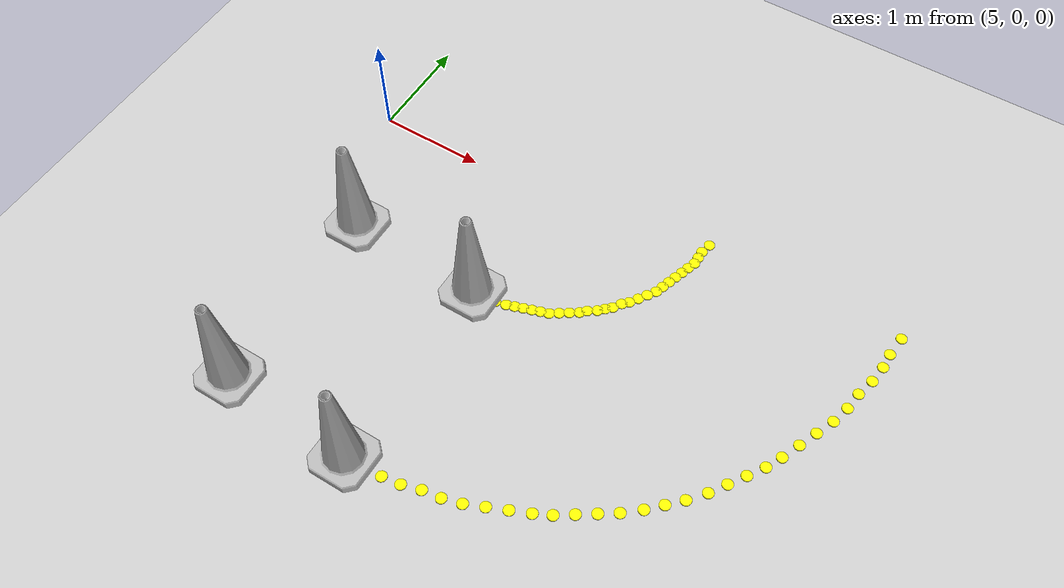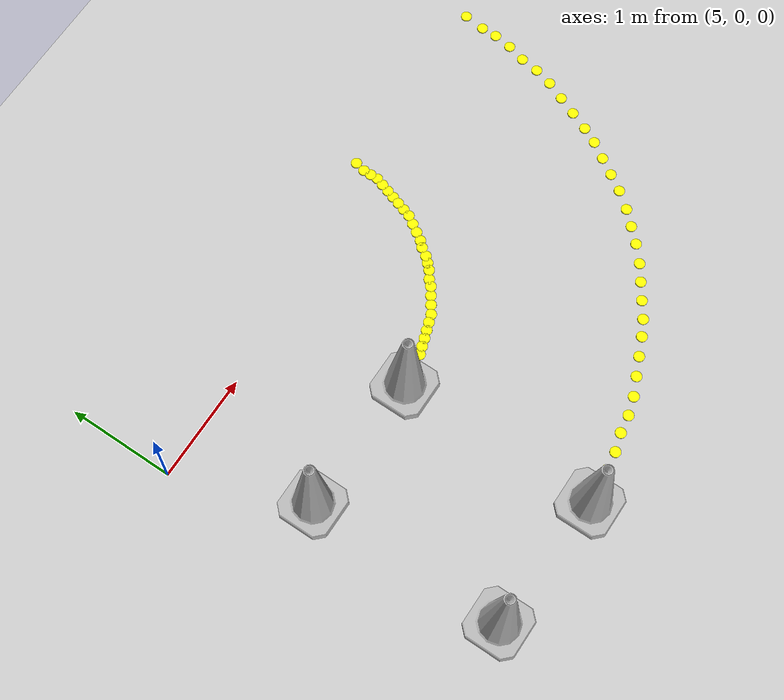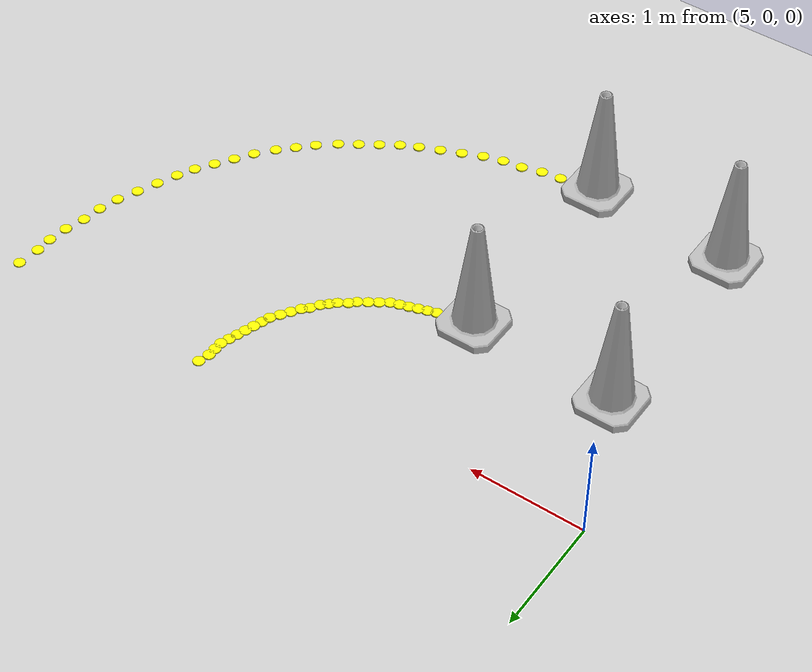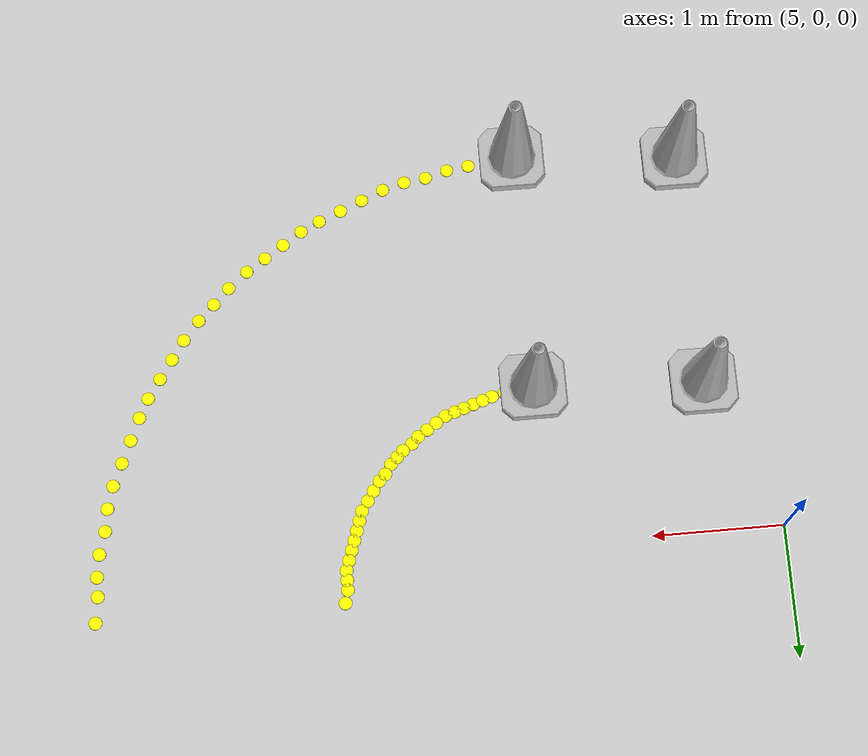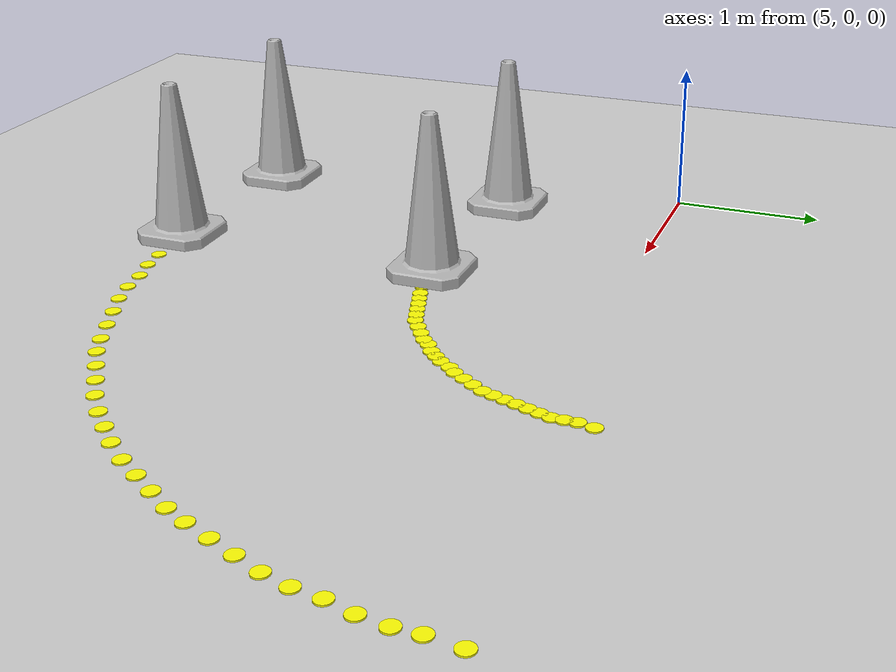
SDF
<sdf version="1.6">
 <world name="default">
  <model name="ground_plane">
   <static>1</static>
   <link name="link">
    <collision name="collision">
     <geometry><plane><normal>0 0 1</normal><size>100 100</size></plane></geometry>
     <surface><friction><ode><mu>100</mu><mu2>50</mu2></ode></friction></surface>
    </collision>
    <visual name="visual">
     <cast_shadows>0</cast_shadows>
     <geometry><plane><normal>0 0 1</normal><size>100 100</size></plane></geometry>
     <material>
      <script><uri>file://media/materials/scripts/gazebo.material</uri><name>Gazebo/Grey</name></script>
     </material>
    </visual>
   </link>
  </model>
  <model name="red_model_1">
   <link name="link">
    <collision name="collision">
     <geometry>
      <mesh><scale>10 10 10</scale><uri>model://construction_cone_red/meshes/construction_cone.dae</uri></mesh>
     </geometry>
    </collision>
    <visual name="visual">
     <geometry>
      <mesh><scale>10 10 10</scale><uri>model://construction_cone_red/meshes/construction_cone.dae</uri></mesh>
     </geometry>
    </visual>
    <inertial>
     <inertia><ixx>1</ixx><ixy>0</ixy><ixz>0</ixz><iyy>1</iyy><iyz>0</iyz><izz>1</izz></inertia>
     <mass>1</mass>
    </inertial>
   </link>
   <pose>6.78955 -1.23001 0.004999 0 -0 0.000331</pose>
  </model>
  <model name="blue_model_3">
   <link name="link">
    <collision name="collision">
     <geometry>
      <mesh><scale>10 10 10</scale><uri>model://construction_cone_blue/meshes/construction_cone.dae</uri></mesh>
     </geometry>
    </collision>
    <visual name="visual">
     <geometry>
      <mesh><scale>10 10 10</scale><uri>model://construction_cone_blue/meshes/construction_cone.dae</uri></mesh>
     </geometry>
    </visual>
    <inertial>
     <inertia><ixx>1</ixx><ixy>0</ixy><ixz>0</ixz><iyy>1</iyy><iyz>0</iyz><izz>1</izz></inertia>
     <mass>1</mass>
    </inertial>
   </link>
   <pose>6.7896 -3.0996 0.004993 0 -0 2.9e-05</pose>
  </model>
  <model name="yellow_model_30">
   <static>1</static>
   <link name="link">
    <visual name="visual">
     <geometry><cylinder><radius>0.05</radius><length>0.01</length></cylinder></geometry>
     <material><ambient>1 1 0 1</ambient><diffuse>1 1 0 1</diffuse><specular>0.5 0.5 0.5 1</specular></material>
    </visual>
    <collision name="collision">
     <geometry><cylinder><radius>0.5</radius><length>0.01</length></cylinder></geometry>
    </collision>
   </link>
   <pose>10.209 0.3198 0 0 -0 0</pose>
  </model>
  <model name="yellow_model_31">
   <static>1</static>
   <link name="link">
    <visual name="visual">
     <geometry><cylinder><radius>0.05</radius><length>0.01</length></cylinder></geometry>
     <material><ambient>1 1 0 1</ambient><diffuse>1 1 0 1</diffuse><specular>0.5 0.5 0.5 1</specular></material>
    </visual>
    <collision name="collision">
     <geometry><cylinder><radius>0.5</radius><length>0.01</length></cylinder></geometry>
    </collision>
   </link>
   <pose>10.1844 0.123 0 0 -0 0</pose>
  </model>
  <model name="yellow_model_32">
   <static>1</static>
   <link name="link">
    <visual name="visual">
     <geometry><cylinder><radius>0.05</radius><length>0.01</length></cylinder></geometry>
     <material><ambient>1 1 0 1</ambient><diffuse>1 1 0 1</diffuse><specular>0.5 0.5 0.5 1</specular></material>
    </visual>
    <collision name="collision">
     <geometry><cylinder><radius>0.5</radius><length>0.01</length></cylinder></geometry>
    </collision>
   </link>
   <pose>10.1844 -0.0246 0 0 -0 0</pose>
  </model>
  <model name="yellow_model_33">
   <static>1</static>
   <link name="link">
    <visual name="visual">
     <geometry><cylinder><radius>0.05</radius><length>0.01</length></cylinder></geometry>
     <material><ambient>1 1 0 1</ambient><diffuse>1 1 0 1</diffuse><specular>0.5 0.5 0.5 1</specular></material>
    </visual>
    <collision name="collision">
     <geometry><cylinder><radius>0.5</radius><length>0.01</length></cylinder></geometry>
    </collision>
   </link>
   <pose>10.1598 -0.1968 0 0 -0 0</pose>
  </model>
  <model name="yellow_model_34">
   <static>1</static>
   <link name="link">
    <visual name="visual">
     <geometry><cylinder><radius>0.05</radius><length>0.01</length></cylinder></geometry>
     <material><ambient>1 1 0 1</ambient><diffuse>1 1 0 1</diffuse><specular>0.5 0.5 0.5 1</specular></material>
    </visual>
    <collision name="collision">
     <geometry><cylinder><radius>0.5</radius><length>0.01</length></cylinder></geometry>
    </collision>
   </link>
   <pose>10.1106 -0.369 0 0 -0 0</pose>
  </model>
  <model name="yellow_model_35">
   <static>1</static>
   <link name="link">
    <visual name="visual">
     <geometry><cylinder><radius>0.05</radius><length>0.01</length></cylinder></geometry>
     <material><ambient>1 1 0 1</ambient><diffuse>1 1 0 1</diffuse><specular>0.5 0.5 0.5 1</specular></material>
    </visual>
    <collision name="collision">
     <geometry><cylinder><radius>0.5</radius><length>0.01</length></cylinder></geometry>
    </collision>
   </link>
   <pose>10.086 -0.5412 0 0 -0 0</pose>
  </model>
  <model name="yellow_model_36">
   <static>1</static>
   <link name="link">
    <visual name="visual">
     <geometry><cylinder><radius>0.05</radius><length>0.01</length></cylinder></geometry>
     <material><ambient>1 1 0 1</ambient><diffuse>1 1 0 1</diffuse><specular>0.5 0.5 0.5 1</specular></material>
    </visual>
    <collision name="collision">
     <geometry><cylinder><radius>0.5</radius><length>0.01</length></cylinder></geometry>
    </collision>
   </link>
   <pose>10.0368 -0.7134 0 0 -0 0</pose>
  </model>
  <model name="yellow_model_37">
   <static>1</static>
   <link name="link">
    <visual name="visual">
     <geometry><cylinder><radius>0.05</radius><length>0.01</length></cylinder></geometry>
     <material><ambient>1 1 0 1</ambient><diffuse>1 1 0 1</diffuse><specular>0.5 0.5 0.5 1</specular></material>
    </visual>
    <collision name="collision">
     <geometry><cylinder><radius>0.5</radius><length>0.01</length></cylinder></geometry>
    </collision>
   </link>
   <pose>9.963 -0.8856 0 0 -0 0</pose>
  </model>
  <model name="yellow_model_38">
   <static>1</static>
   <link name="link">
    <visual name="visual">
     <geometry><cylinder><radius>0.05</radius><length>0.01</length></cylinder></geometry>
     <material><ambient>1 1 0 1</ambient><diffuse>1 1 0 1</diffuse><specular>0.5 0.5 0.5 1</specular></material>
    </visual>
    <collision name="collision">
     <geometry><cylinder><radius>0.5</radius><length>0.01</length></cylinder></geometry>
    </collision>
   </link>
   <pose>9.8892 -1.0578 0 0 -0 0</pose>
  </model>
  <model name="yellow_model_39">
   <static>1</static>
   <link name="link">
    <visual name="visual">
     <geometry><cylinder><radius>0.05</radius><length>0.01</length></cylinder></geometry>
     <material><ambient>1 1 0 1</ambient><diffuse>1 1 0 1</diffuse><specular>0.5 0.5 0.5 1</specular></material>
    </visual>
    <collision name="collision">
     <geometry><cylinder><radius>0.5</radius><length>0.01</length></cylinder></geometry>
    </collision>
   </link>
   <pose>9.8154 -1.23 0 0 -0 0</pose>
  </model>
  <model name="yellow_model_40">
   <static>1</static>
   <link name="link">
    <visual name="visual">
     <geometry><cylinder><radius>0.05</radius><length>0.01</length></cylinder></geometry>
     <material><ambient>1 1 0 1</ambient><diffuse>1 1 0 1</diffuse><specular>0.5 0.5 0.5 1</specular></material>
    </visual>
    <collision name="collision">
     <geometry><cylinder><radius>0.5</radius><length>0.01</length></cylinder></geometry>
    </collision>
   </link>
   <pose>9.7416 -1.3776 0 0 -0 0</pose>
  </model>
  <model name="yellow_model_41">
   <static>1</static>
   <link name="link">
    <visual name="visual">
     <geometry><cylinder><radius>0.05</radius><length>0.01</length></cylinder></geometry>
     <material><ambient>1 1 0 1</ambient><diffuse>1 1 0 1</diffuse><specular>0.5 0.5 0.5 1</specular></material>
    </visual>
    <collision name="collision">
     <geometry><cylinder><radius>0.5</radius><length>0.01</length></cylinder></geometry>
    </collision>
   </link>
   <pose>9.6432 -1.5252 0 0 -0 0</pose>
  </model>
  <model name="yellow_model_42">
   <static>1</static>
   <link name="link">
    <visual name="visual">
     <geometry><cylinder><radius>0.05</radius><length>0.01</length></cylinder></geometry>
     <material><ambient>1 1 0 1</ambient><diffuse>1 1 0 1</diffuse><specular>0.5 0.5 0.5 1</specular></material>
    </visual>
    <collision name="collision">
     <geometry><cylinder><radius>0.5</radius><length>0.01</length></cylinder></geometry>
    </collision>
   </link>
   <pose>9.5448 -1.6728 0 0 -0 0</pose>
  </model>
  <model name="yellow_model_43">
   <static>1</static>
   <link name="link">
    <visual name="visual">
     <geometry><cylinder><radius>0.05</radius><length>0.01</length></cylinder></geometry>
     <material><ambient>1 1 0 1</ambient><diffuse>1 1 0 1</diffuse><specular>0.5 0.5 0.5 1</specular></material>
    </visual>
    <collision name="collision">
     <geometry><cylinder><radius>0.5</radius><length>0.01</length></cylinder></geometry>
    </collision>
   </link>
   <pose>9.4464 -1.8204 0 0 -0 0</pose>
  </model>
  <model name="yellow_model_44">
   <static>1</static>
   <link name="link">
    <visual name="visual">
     <geometry><cylinder><radius>0.05</radius><length>0.01</length></cylinder></geometry>
     <material><ambient>1 1 0 1</ambient><diffuse>1 1 0 1</diffuse><specular>0.5 0.5 0.5 1</specular></material>
    </visual>
    <collision name="collision">
     <geometry><cylinder><radius>0.5</radius><length>0.01</length></cylinder></geometry>
    </collision>
   </link>
   <pose>9.3234 -1.968 0 0 -0 0</pose>
  </model>
  <model name="yellow_model_45">
   <static>1</static>
   <link name="link">
    <visual name="visual">
     <geometry><cylinder><radius>0.05</radius><length>0.01</length></cylinder></geometry>
     <material><ambient>1 1 0 1</ambient><diffuse>1 1 0 1</diffuse><specular>0.5 0.5 0.5 1</specular></material>
    </visual>
    <collision name="collision">
     <geometry><cylinder><radius>0.5</radius><length>0.01</length></cylinder></geometry>
    </collision>
   </link>
   <pose>9.2004 -2.091 0 0 -0 0</pose>
  </model>
  <model name="yellow_model_46">
   <static>1</static>
   <link name="link">
    <visual name="visual">
     <geometry><cylinder><radius>0.05</radius><length>0.01</length></cylinder></geometry>
     <material><ambient>1 1 0 1</ambient><diffuse>1 1 0 1</diffuse><specular>0.5 0.5 0.5 1</specular></material>
    </visual>
    <collision name="collision">
     <geometry><cylinder><radius>0.5</radius><length>0.01</length></cylinder></geometry>
    </collision>
   </link>
   <pose>9.0774 -2.214 0 0 -0 0</pose>
  </model>
  <model name="yellow_model_47">
   <static>1</static>
   <link name="link">
    <visual name="visual">
     <geometry><cylinder><radius>0.05</radius><length>0.01</length></cylinder></geometry>
     <material><ambient>1 1 0 1</ambient><diffuse>1 1 0 1</diffuse><specular>0.5 0.5 0.5 1</specular></material>
    </visual>
    <collision name="collision">
     <geometry><cylinder><radius>0.5</radius><length>0.01</length></cylinder></geometry>
    </collision>
   </link>
   <pose>8.9298 -2.337 0 0 -0 0</pose>
  </model>
  <model name="yellow_model_48">
   <static>1</static>
   <link name="link">
    <visual name="visual">
     <geometry><cylinder><radius>0.05</radius><length>0.01</length></cylinder></geometry>
     <material><ambient>1 1 0 1</ambient><diffuse>1 1 0 1</diffuse><specular>0.5 0.5 0.5 1</specular></material>
    </visual>
    <collision name="collision">
     <geometry><cylinder><radius>0.5</radius><length>0.01</length></cylinder></geometry>
    </collision>
   </link>
   <pose>8.7822 -2.4354 0 0 -0 0</pose>
  </model>
  <model name="yellow_model_49">
   <static>1</static>
   <link name="link">
    <visual name="visual">
     <geometry><cylinder><radius>0.05</radius><length>0.01</length></cylinder></geometry>
     <material><ambient>1 1 0 1</ambient><diffuse>1 1 0 1</diffuse><specular>0.5 0.5 0.5 1</specular></material>
    </visual>
    <collision name="collision">
     <geometry><cylinder><radius>0.5</radius><length>0.01</length></cylinder></geometry>
    </collision>
   </link>
   <pose>8.6346 -2.5338 0 0 -0 0</pose>
  </model>
  <model name="yellow_model_50">
   <static>1</static>
   <link name="link">
    <visual name="visual">
     <geometry><cylinder><radius>0.05</radius><length>0.01</length></cylinder></geometry>
     <material><ambient>1 1 0 1</ambient><diffuse>1 1 0 1</diffuse><specular>0.5 0.5 0.5 1</specular></material>
    </visual>
    <collision name="collision">
     <geometry><cylinder><radius>0.5</radius><length>0.01</length></cylinder></geometry>
    </collision>
   </link>
   <pose>8.487 -2.6322 0 0 -0 0</pose>
  </model>
  <model name="yellow_model_51">
   <static>1</static>
   <link name="link">
    <visual name="visual">
     <geometry><cylinder><radius>0.05</radius><length>0.01</length></cylinder></geometry>
     <material><ambient>1 1 0 1</ambient><diffuse>1 1 0 1</diffuse><specular>0.5 0.5 0.5 1</specular></material>
    </visual>
    <collision name="collision">
     <geometry><cylinder><radius>0.5</radius><length>0.01</length></cylinder></geometry>
    </collision>
   </link>
   <pose>8.3394 -2.706 0 0 -0 0</pose>
  </model>
  <model name="yellow_model_52">
   <static>1</static>
   <link name="link">
    <visual name="visual">
     <geometry><cylinder><radius>0.05</radius><length>0.01</length></cylinder></geometry>
     <material><ambient>1 1 0 1</ambient><diffuse>1 1 0 1</diffuse><specular>0.5 0.5 0.5 1</specular></material>
    </visual>
    <collision name="collision">
     <geometry><cylinder><radius>0.5</radius><length>0.01</length></cylinder></geometry>
    </collision>
   </link>
   <pose>8.1672 -2.7798 0 0 -0 0</pose>
  </model>
  <model name="yellow_model_53">
   <static>1</static>
   <link name="link">
    <visual name="visual">
     <geometry><cylinder><radius>0.05</radius><length>0.01</length></cylinder></geometry>
     <material><ambient>1 1 0 1</ambient><diffuse>1 1 0 1</diffuse><specular>0.5 0.5 0.5 1</specular></material>
    </visual>
    <collision name="collision">
     <geometry><cylinder><radius>0.5</radius><length>0.01</length></cylinder></geometry>
    </collision>
   </link>
   <pose>7.995 -2.8536 0 0 -0 0</pose>
  </model>
  <model name="yellow_model_54">
   <static>1</static>
   <link name="link">
    <visual name="visual">
     <geometry><cylinder><radius>0.05</radius><length>0.01</length></cylinder></geometry>
     <material><ambient>1 1 0 1</ambient><diffuse>1 1 0 1</diffuse><specular>0.5 0.5 0.5 1</specular></material>
    </visual>
    <collision name="collision">
     <geometry><cylinder><radius>0.5</radius><length>0.01</length></cylinder></geometry>
    </collision>
   </link>
   <pose>7.8228 -2.9274 0 0 -0 0</pose>
  </model>
  <model name="yellow_model_55">
   <static>1</static>
   <link name="link">
    <visual name="visual">
     <geometry><cylinder><radius>0.05</radius><length>0.01</length></cylinder></geometry>
     <material><ambient>1 1 0 1</ambient><diffuse>1 1 0 1</diffuse><specular>0.5 0.5 0.5 1</specular></material>
    </visual>
    <collision name="collision">
     <geometry><cylinder><radius>0.5</radius><length>0.01</length></cylinder></geometry>
    </collision>
   </link>
   <pose>7.6506 -2.9766 0 0 -0 0</pose>
  </model>
  <model name="yellow_model_56">
   <static>1</static>
   <link name="link">
    <visual name="visual">
     <geometry><cylinder><radius>0.05</radius><length>0.01</length></cylinder></geometry>
     <material><ambient>1 1 0 1</ambient><diffuse>1 1 0 1</diffuse><specular>0.5 0.5 0.5 1</specular></material>
    </visual>
    <collision name="collision">
     <geometry><cylinder><radius>0.5</radius><length>0.01</length></cylinder></geometry>
    </collision>
   </link>
   <pose>7.4784 -3.0012 0 0 -0 0</pose>
  </model>
  <model name="yellow_model_57">
   <static>1</static>
   <link name="link">
    <visual name="visual">
     <geometry><cylinder><radius>0.05</radius><length>0.01</length></cylinder></geometry>
     <material><ambient>1 1 0 1</ambient><diffuse>1 1 0 1</diffuse><specular>0.5 0.5 0.5 1</specular></material>
    </visual>
    <collision name="collision">
     <geometry><cylinder><radius>0.5</radius><length>0.01</length></cylinder></geometry>
    </collision>
   </link>
   <pose>7.3062 -3.0504 0 0 -0 0</pose>
  </model>
  <model name="yellow_model_58">
   <static>1</static>
   <link name="link">
    <visual name="visual">
     <geometry><cylinder><radius>0.05</radius><length>0.01</length></cylinder></geometry>
     <material><ambient>1 1 0 1</ambient><diffuse>1 1 0 1</diffuse><specular>0.5 0.5 0.5 1</specular></material>
    </visual>
    <collision name="collision">
     <geometry><cylinder><radius>0.5</radius><length>0.01</length></cylinder></geometry>
    </collision>
   </link>
   <pose>7.134 -3.075 0 0 -0 0</pose>
  </model>
  <model name="yellow_model_59">
   <static>1</static>
   <link name="link">
    <visual name="visual">
     <geometry><cylinder><radius>0.05</radius><length>0.01</length></cylinder></geometry>
     <material><ambient>1 1 0 1</ambient><diffuse>1 1 0 1</diffuse><specular>0.5 0.5 0.5 1</specular></material>
    </visual>
    <collision name="collision">
     <geometry><cylinder><radius>0.5</radius><length>0.01</length></cylinder></geometry>
    </collision>
   </link>
   <pose>6.9618 -3.075 0 0 -0 0</pose>
  </model>
  <model name="yellow_model_60">
   <static>1</static>
   <link name="link">
    <visual name="visual">
     <geometry><cylinder><radius>0.05</radius><length>0.01</length></cylinder></geometry>
     <material><ambient>1 1 0 1</ambient><diffuse>1 1 0 1</diffuse><specular>0.5 0.5 0.5 1</specular></material>
    </visual>
    <collision name="collision">
     <geometry><cylinder><radius>0.5</radius><length>0.01</length></cylinder></geometry>
    </collision>
   </link>
   <pose>6.7896 -3.0996 0 0 -0 0</pose>
  </model>
  <model name="yellow_model_91">
   <static>1</static>
   <link name="link">
    <visual name="visual">
     <geometry><cylinder><radius>0.05</radius><length>0.01</length></cylinder></geometry>
     <material><ambient>1 1 0 1</ambient><diffuse>1 1 0 1</diffuse><specular>0.5 0.5 0.5 1</specular></material>
    </visual>
    <collision name="collision">
     <geometry><cylinder><radius>0.5</radius><length>0.01</length></cylinder></geometry>
    </collision>
   </link>
   <pose>8.3394 0.3198 0 0 -0 0</pose>
  </model>
  <model name="yellow_model_92">
   <static>1</static>
   <link name="link">
    <visual name="visual">
     <geometry><cylinder><radius>0.05</radius><length>0.01</length></cylinder></geometry>
     <material><ambient>1 1 0 1</ambient><diffuse>1 1 0 1</diffuse><specular>0.5 0.5 0.5 1</specular></material>
    </visual>
    <collision name="collision">
     <geometry><cylinder><radius>0.5</radius><length>0.01</length></cylinder></geometry>
    </collision>
   </link>
   <pose>8.3148 0.2214 0 0 -0 0</pose>
  </model>
  <model name="yellow_model_93">
   <static>1</static>
   <link name="link">
    <visual name="visual">
     <geometry><cylinder><radius>0.05</radius><length>0.01</length></cylinder></geometry>
     <material><ambient>1 1 0 1</ambient><diffuse>1 1 0 1</diffuse><specular>0.5 0.5 0.5 1</specular></material>
    </visual>
    <collision name="collision">
     <geometry><cylinder><radius>0.5</radius><length>0.01</length></cylinder></geometry>
    </collision>
   </link>
   <pose>8.3148 0.1476 0 0 -0 0</pose>
  </model>
  <model name="yellow_model_94">
   <static>1</static>
   <link name="link">
    <visual name="visual">
     <geometry><cylinder><radius>0.05</radius><length>0.01</length></cylinder></geometry>
     <material><ambient>1 1 0 1</ambient><diffuse>1 1 0 1</diffuse><specular>0.5 0.5 0.5 1</specular></material>
    </visual>
    <collision name="collision">
     <geometry><cylinder><radius>0.5</radius><length>0.01</length></cylinder></geometry>
    </collision>
   </link>
   <pose>8.3148 0.0738 0 0 -0 0</pose>
  </model>
  <model name="yellow_model_95">
   <static>1</static>
   <link name="link">
    <visual name="visual">
     <geometry><cylinder><radius>0.05</radius><length>0.01</length></cylinder></geometry>
     <material><ambient>1 1 0 1</ambient><diffuse>1 1 0 1</diffuse><specular>0.5 0.5 0.5 1</specular></material>
    </visual>
    <collision name="collision">
     <geometry><cylinder><radius>0.5</radius><length>0.01</length></cylinder></geometry>
    </collision>
   </link>
   <pose>8.2902 0 0 0 -0 0</pose>
  </model>
  <model name="yellow_model_96">
   <static>1</static>
   <link name="link">
    <visual name="visual">
     <geometry><cylinder><radius>0.05</radius><length>0.01</length></cylinder></geometry>
     <material><ambient>1 1 0 1</ambient><diffuse>1 1 0 1</diffuse><specular>0.5 0.5 0.5 1</specular></material>
    </visual>
    <collision name="collision">
     <geometry><cylinder><radius>0.5</radius><length>0.01</length></cylinder></geometry>
    </collision>
   </link>
   <pose>8.2656 -0.0738 0 0 -0 0</pose>
  </model>
  <model name="yellow_model_97">
   <static>1</static>
   <link name="link">
    <visual name="visual">
     <geometry><cylinder><radius>0.05</radius><length>0.01</length></cylinder></geometry>
     <material><ambient>1 1 0 1</ambient><diffuse>1 1 0 1</diffuse><specular>0.5 0.5 0.5 1</specular></material>
    </visual>
    <collision name="collision">
     <geometry><cylinder><radius>0.5</radius><length>0.01</length></cylinder></geometry>
    </collision>
   </link>
   <pose>8.241 -0.1476 0 0 -0 0</pose>
  </model>
  <model name="yellow_model_98">
   <static>1</static>
   <link name="link">
    <visual name="visual">
     <geometry><cylinder><radius>0.05</radius><length>0.01</length></cylinder></geometry>
     <material><ambient>1 1 0 1</ambient><diffuse>1 1 0 1</diffuse><specular>0.5 0.5 0.5 1</specular></material>
    </visual>
    <collision name="collision">
     <geometry><cylinder><radius>0.5</radius><length>0.01</length></cylinder></geometry>
    </collision>
   </link>
   <pose>8.2164 -0.2214 0 0 -0 0</pose>
  </model>
  <model name="yellow_model_99">
   <static>1</static>
   <link name="link">
    <visual name="visual">
     <geometry><cylinder><radius>0.05</radius><length>0.01</length></cylinder></geometry>
     <material><ambient>1 1 0 1</ambient><diffuse>1 1 0 1</diffuse><specular>0.5 0.5 0.5 1</specular></material>
    </visual>
    <collision name="collision">
     <geometry><cylinder><radius>0.5</radius><length>0.01</length></cylinder></geometry>
    </collision>
   </link>
   <pose>8.1918 -0.2952 0 0 -0 0</pose>
  </model>
  <model name="yellow_model_100">
   <static>1</static>
   <link name="link">
    <visual name="visual">
     <geometry><cylinder><radius>0.05</radius><length>0.01</length></cylinder></geometry>
     <material><ambient>1 1 0 1</ambient><diffuse>1 1 0 1</diffuse><specular>0.5 0.5 0.5 1</specular></material>
    </visual>
    <collision name="collision">
     <geometry><cylinder><radius>0.5</radius><length>0.01</length></cylinder></geometry>
    </collision>
   </link>
   <pose>8.1672 -0.369 0 0 -0 0</pose>
  </model>
  <model name="yellow_model_101">
   <static>1</static>
   <link name="link">
    <visual name="visual">
     <geometry><cylinder><radius>0.05</radius><length>0.01</length></cylinder></geometry>
     <material><ambient>1 1 0 1</ambient><diffuse>1 1 0 1</diffuse><specular>0.5 0.5 0.5 1</specular></material>
    </visual>
    <collision name="collision">
     <geometry><cylinder><radius>0.5</radius><length>0.01</length></cylinder></geometry>
    </collision>
   </link>
   <pose>8.118 -0.4428 0 0 -0 0</pose>
  </model>
  <model name="yellow_model_102">
   <static>1</static>
   <link name="link">
    <visual name="visual">
     <geometry><cylinder><radius>0.05</radius><length>0.01</length></cylinder></geometry>
     <material><ambient>1 1 0 1</ambient><diffuse>1 1 0 1</diffuse><specular>0.5 0.5 0.5 1</specular></material>
    </visual>
    <collision name="collision">
     <geometry><cylinder><radius>0.5</radius><length>0.01</length></cylinder></geometry>
    </collision>
   </link>
   <pose>8.0688 -0.5166 0 0 -0 0</pose>
  </model>
  <model name="yellow_model_103">
   <static>1</static>
   <link name="link">
    <visual name="visual">
     <geometry><cylinder><radius>0.05</radius><length>0.01</length></cylinder></geometry>
     <material><ambient>1 1 0 1</ambient><diffuse>1 1 0 1</diffuse><specular>0.5 0.5 0.5 1</specular></material>
    </visual>
    <collision name="collision">
     <geometry><cylinder><radius>0.5</radius><length>0.01</length></cylinder></geometry>
    </collision>
   </link>
   <pose>8.0196 -0.5904 0 0 -0 0</pose>
  </model>
  <model name="yellow_model_104">
   <static>1</static>
   <link name="link">
    <visual name="visual">
     <geometry><cylinder><radius>0.05</radius><length>0.01</length></cylinder></geometry>
     <material><ambient>1 1 0 1</ambient><diffuse>1 1 0 1</diffuse><specular>0.5 0.5 0.5 1</specular></material>
    </visual>
    <collision name="collision">
     <geometry><cylinder><radius>0.5</radius><length>0.01</length></cylinder></geometry>
    </collision>
   </link>
   <pose>7.9704 -0.6396 0 0 -0 0</pose>
  </model>
  <model name="yellow_model_105">
   <static>1</static>
   <link name="link">
    <visual name="visual">
     <geometry><cylinder><radius>0.05</radius><length>0.01</length></cylinder></geometry>
     <material><ambient>1 1 0 1</ambient><diffuse>1 1 0 1</diffuse><specular>0.5 0.5 0.5 1</specular></material>
    </visual>
    <collision name="collision">
     <geometry><cylinder><radius>0.5</radius><length>0.01</length></cylinder></geometry>
    </collision>
   </link>
   <pose>7.9212 -0.7134 0 0 -0 0</pose>
  </model>
  <model name="yellow_model_106">
   <static>1</static>
   <link name="link">
    <visual name="visual">
     <geometry><cylinder><radius>0.05</radius><length>0.01</length></cylinder></geometry>
     <material><ambient>1 1 0 1</ambient><diffuse>1 1 0 1</diffuse><specular>0.5 0.5 0.5 1</specular></material>
    </visual>
    <collision name="collision">
     <geometry><cylinder><radius>0.5</radius><length>0.01</length></cylinder></geometry>
    </collision>
   </link>
   <pose>7.872 -0.7626 0 0 -0 0</pose>
  </model>
  <model name="yellow_model_107">
   <static>1</static>
   <link name="link">
    <visual name="visual">
     <geometry><cylinder><radius>0.05</radius><length>0.01</length></cylinder></geometry>
     <material><ambient>1 1 0 1</ambient><diffuse>1 1 0 1</diffuse><specular>0.5 0.5 0.5 1</specular></material>
    </visual>
    <collision name="collision">
     <geometry><cylinder><radius>0.5</radius><length>0.01</length></cylinder></geometry>
    </collision>
   </link>
   <pose>7.8228 -0.8118 0 0 -0 0</pose>
  </model>
  <model name="yellow_model_108">
   <static>1</static>
   <link name="link">
    <visual name="visual">
     <geometry><cylinder><radius>0.05</radius><length>0.01</length></cylinder></geometry>
     <material><ambient>1 1 0 1</ambient><diffuse>1 1 0 1</diffuse><specular>0.5 0.5 0.5 1</specular></material>
    </visual>
    <collision name="collision">
     <geometry><cylinder><radius>0.5</radius><length>0.01</length></cylinder></geometry>
    </collision>
   </link>
   <pose>7.749 -0.861 0 0 -0 0</pose>
  </model>
  <model name="yellow_model_109">
   <static>1</static>
   <link name="link">
    <visual name="visual">
     <geometry><cylinder><radius>0.05</radius><length>0.01</length></cylinder></geometry>
     <material><ambient>1 1 0 1</ambient><diffuse>1 1 0 1</diffuse><specular>0.5 0.5 0.5 1</specular></material>
    </visual>
    <collision name="collision">
     <geometry><cylinder><radius>0.5</radius><length>0.01</length></cylinder></geometry>
    </collision>
   </link>
   <pose>7.6998 -0.9102 0 0 -0 0</pose>
  </model>
  <model name="yellow_model_110">
   <static>1</static>
   <link name="link">
    <visual name="visual">
     <geometry><cylinder><radius>0.05</radius><length>0.01</length></cylinder></geometry>
     <material><ambient>1 1 0 1</ambient><diffuse>1 1 0 1</diffuse><specular>0.5 0.5 0.5 1</specular></material>
    </visual>
    <collision name="collision">
     <geometry><cylinder><radius>0.5</radius><length>0.01</length></cylinder></geometry>
    </collision>
   </link>
   <pose>7.626 -0.9594 0 0 -0 0</pose>
  </model>
  <model name="yellow_model_111">
   <static>1</static>
   <link name="link">
    <visual name="visual">
     <geometry><cylinder><radius>0.05</radius><length>0.01</length></cylinder></geometry>
     <material><ambient>1 1 0 1</ambient><diffuse>1 1 0 1</diffuse><specular>0.5 0.5 0.5 1</specular></material>
    </visual>
    <collision name="collision">
     <geometry><cylinder><radius>0.5</radius><length>0.01</length></cylinder></geometry>
    </collision>
   </link>
   <pose>7.5522 -1.0086 0 0 -0 0</pose>
  </model>
  <model name="yellow_model_112">
   <static>1</static>
   <link name="link">
    <visual name="visual">
     <geometry><cylinder><radius>0.05</radius><length>0.01</length></cylinder></geometry>
     <material><ambient>1 1 0 1</ambient><diffuse>1 1 0 1</diffuse><specular>0.5 0.5 0.5 1</specular></material>
    </visual>
    <collision name="collision">
     <geometry><cylinder><radius>0.5</radius><length>0.01</length></cylinder></geometry>
    </collision>
   </link>
   <pose>7.4784 -1.0578 0 0 -0 0</pose>
  </model>
  <model name="yellow_model_113">
   <static>1</static>
   <link name="link">
    <visual name="visual">
     <geometry><cylinder><radius>0.05</radius><length>0.01</length></cylinder></geometry>
     <material><ambient>1 1 0 1</ambient><diffuse>1 1 0 1</diffuse><specular>0.5 0.5 0.5 1</specular></material>
    </visual>
    <collision name="collision">
     <geometry><cylinder><radius>0.5</radius><length>0.01</length></cylinder></geometry>
    </collision>
   </link>
   <pose>7.4046 -1.0824 0 0 -0 0</pose>
  </model>
  <model name="yellow_model_114">
   <static>1</static>
   <link name="link">
    <visual name="visual">
     <geometry><cylinder><radius>0.05</radius><length>0.01</length></cylinder></geometry>
     <material><ambient>1 1 0 1</ambient><diffuse>1 1 0 1</diffuse><specular>0.5 0.5 0.5 1</specular></material>
    </visual>
    <collision name="collision">
     <geometry><cylinder><radius>0.5</radius><length>0.01</length></cylinder></geometry>
    </collision>
   </link>
   <pose>7.3308 -1.107 0 0 -0 0</pose>
  </model>
  <model name="yellow_model_115">
   <static>1</static>
   <link name="link">
    <visual name="visual">
     <geometry><cylinder><radius>0.05</radius><length>0.01</length></cylinder></geometry>
     <material><ambient>1 1 0 1</ambient><diffuse>1 1 0 1</diffuse><specular>0.5 0.5 0.5 1</specular></material>
    </visual>
    <collision name="collision">
     <geometry><cylinder><radius>0.5</radius><length>0.01</length></cylinder></geometry>
    </collision>
   </link>
   <pose>7.257 -1.1316 0 0 -0 0</pose>
  </model>
  <model name="yellow_model_116">
   <static>1</static>
   <link name="link">
    <visual name="visual">
     <geometry><cylinder><radius>0.05</radius><length>0.01</length></cylinder></geometry>
     <material><ambient>1 1 0 1</ambient><diffuse>1 1 0 1</diffuse><specular>0.5 0.5 0.5 1</specular></material>
    </visual>
    <collision name="collision">
     <geometry><cylinder><radius>0.5</radius><length>0.01</length></cylinder></geometry>
    </collision>
   </link>
   <pose>7.1832 -1.1562 0 0 -0 0</pose>
  </model>
  <model name="yellow_model_117">
   <static>1</static>
   <link name="link">
    <visual name="visual">
     <geometry><cylinder><radius>0.05</radius><length>0.01</length></cylinder></geometry>
     <material><ambient>1 1 0 1</ambient><diffuse>1 1 0 1</diffuse><specular>0.5 0.5 0.5 1</specular></material>
    </visual>
    <collision name="collision">
     <geometry><cylinder><radius>0.5</radius><length>0.01</length></cylinder></geometry>
    </collision>
   </link>
   <pose>7.1094 -1.1808 0 0 -0 0</pose>
  </model>
  <model name="yellow_model_118">
   <static>1</static>
   <link name="link">
    <visual name="visual">
     <geometry><cylinder><radius>0.05</radius><length>0.01</length></cylinder></geometry>
     <material><ambient>1 1 0 1</ambient><diffuse>1 1 0 1</diffuse><specular>0.5 0.5 0.5 1</specular></material>
    </visual>
    <collision name="collision">
     <geometry><cylinder><radius>0.5</radius><length>0.01</length></cylinder></geometry>
    </collision>
   </link>
   <pose>7.011 -1.2054 0 0 -0 0</pose>
  </model>
  <model name="yellow_model_119">
   <static>1</static>
   <link name="link">
    <visual name="visual">
     <geometry><cylinder><radius>0.05</radius><length>0.01</length></cylinder></geometry>
     <material><ambient>1 1 0 1</ambient><diffuse>1 1 0 1</diffuse><specular>0.5 0.5 0.5 1</specular></material>
    </visual>
    <collision name="collision">
     <geometry><cylinder><radius>0.5</radius><length>0.01</length></cylinder></geometry>
    </collision>
   </link>
   <pose>6.9372 -1.2054 0 0 -0 0</pose>
  </model>
  <model name="yellow_model_120">
   <static>1</static>
   <link name="link">
    <visual name="visual">
     <geometry><cylinder><radius>0.05</radius><length>0.01</length></cylinder></geometry>
     <material><ambient>1 1 0 1</ambient><diffuse>1 1 0 1</diffuse><specular>0.5 0.5 0.5 1</specular></material>
    </visual>
    <collision name="collision">
     <geometry><cylinder><radius>0.5</radius><length>0.01</length></cylinder></geometry>
    </collision>
   </link>
   <pose>6.8634 -1.2054 0 0 -0 0</pose>
  </model>
  <model name="yellow_model_121">
   <static>1</static>
   <link name="link">
    <visual name="visual">
     <geometry><cylinder><radius>0.05</radius><length>0.01</length></cylinder></geometry>
     <material><ambient>1 1 0 1</ambient><diffuse>1 1 0 1</diffuse><specular>0.5 0.5 0.5 1</specular></material>
    </visual>
    <collision name="collision">
     <geometry><cylinder><radius>0.5</radius><length>0.01</length></cylinder></geometry>
    </collision>
   </link>
   <pose>6.7896 -1.23 0 0 -0 0</pose>
  </model>
  <model name="Construction Cone blue_0">
   <link name="link">
    <collision name="collision">
     <geometry>
      <mesh><scale>10 10 10</scale><uri>model://construction_cone_blue/meshes/construction_cone.dae</uri></mesh>
     </geometry>
    </collision>
    <visual name="visual">
     <geometry>
      <mesh><scale>10 10 10</scale><uri>model://construction_cone_blue/meshes/construction_cone.dae</uri></mesh>
     </geometry>
    </visual>
    <inertial>
     <inertia><ixx>1</ixx><ixy>0</ixy><ixz>0</ixz><iyy>1</iyy><iyz>0</iyz><izz>1</izz></inertia>
     <mass>1</mass>
    </inertial>
   </link>
   <pose>5.5062 -3.00384 -1e-05 -0 -0 -0</pose>
  </model>
  <model name="Construction Cone red">
   <link name="link">
    <collision name="collision">
     <geometry>
      <mesh><scale>10 10 10</scale><uri>model://construction_cone_red/meshes/construction_cone.dae</uri></mesh>
     </geometry>
    </collision>
    <visual name="visual">
     <geometry>
      <mesh><scale>10 10 10</scale><uri>model://construction_cone_red/meshes/construction_cone.dae</uri></mesh>
     </geometry>
    </visual>
    <inertial>
     <inertia><ixx>1</ixx><ixy>0</ixy><ixz>0</ixz><iyy>1</iyy><iyz>0</iyz><izz>1</izz></inertia>
     <mass>1</mass>
    </inertial>
   </link>
   <pose>5.48216 -1.16883 -0 0 -0 0</pose>
  </model>
 </world>
</sdf>
